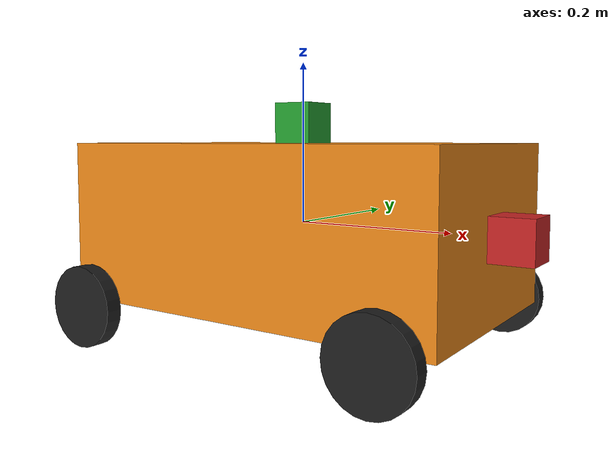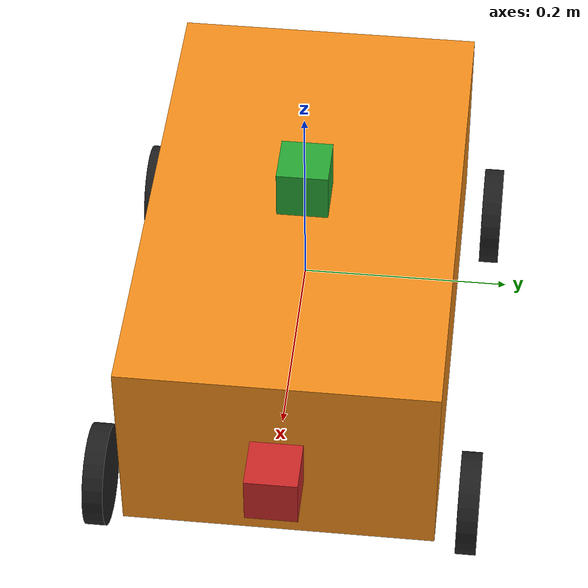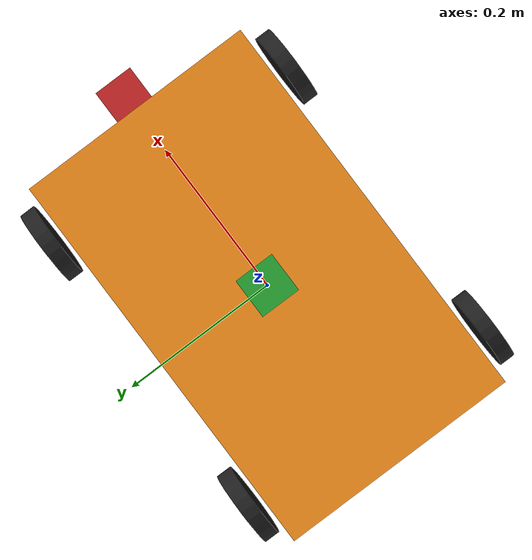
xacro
<?xml version="1.0"?>
<!-- Revolute-Revolute Manipulator -->
<robot name="vehicle" xmlns:xacro="http://www.ros.org/wiki/xacro">

  <!-- Constants for robot dimensions -->
  <xacro:property name="PI" value="3.1415926535897931"/>
  <xacro:property name="mass" value="1" /> <!-- arbitrary value for mass -->
  <xacro:property name="width" value="0.3" /> <!-- Square dimensions (widthxwidth) of vehicle body -->
  <xacro:property name="length" value="0.5" /> <!-- Link 1 -->
  <xacro:property name="height" value="0.2" /> <!-- Link 2 -->
  <xacro:property name="wheel_d" value="0.1" /> <!-- Wheel diameter -->
  <xacro:property name="wheel_t" value="0.02" /> <!-- Wheel thickness -->
  <xacro:property name="gap" value="0.02" /> <!-- Wheel gap -->
  <xacro:property name="camera_link" value="0.05" /> <!-- Size of square 'camera' box -->

  <!-- Import all Gazebo-customization elements, including Gazebo colors -->
  <xacro:include filename="$(find vehicle_description)/urdf/vehicle.gazebo" />
  <!-- Import Rviz colors -->
  <xacro:include filename="$(find vehicle_description)/urdf/materials.xacro" />

  <!-- Body Link  -->
  <link name="body">
    <collision>
      <origin xyz="0 0 0" rpy="0 0 0"/>
      <geometry>
				<box size="${length} ${width} ${height}"/>
      </geometry>
    </collision>

    <visual>
      <origin xyz="0 0 0" rpy="0 0 0"/>
      <geometry>
				<box size="${length} ${width} ${height}"/>
      </geometry>
      <material name="orange"/>
    </visual>

    <inertial>
      <origin xyz="0 0 0" rpy="0 0 0"/>
      <mass value="${mass}"/>
      <inertia
			ixx="${mass / 12.0 * (width*width + height*height)}" ixy="0.0" ixz="0.0"
			iyy="${mass / 12.0 * (length*length + height*height)}" iyz="0.0"
			izz="${mass / 12.0 * (width*width + width*width)}"/>
		</inertial>
  </link>

  <joint name="joint1" type="continuous">
    <parent link="body"/>
    <child link="wheel_lf"/>
    <origin xyz="${length/2-wheel_d/2} ${width/2} ${-height/2}" rpy="0 0 0"/>
    <axis xyz="0 1 0"/>
    <dynamics damping="0.7"/>
  </joint>

  <joint name="joint2" type="continuous">
    <parent link="body"/>
    <child link="wheel_rf"/>
    <origin xyz="${length/2-wheel_d/2} ${-width/2} ${-height/2}" rpy="0 0 0"/>
    <axis xyz="0 1 0"/>
    <dynamics damping="0.7"/>
  </joint>

  <joint name="joint3" type="continuous">
    <parent link="body"/>
    <child link="wheel_lb"/>
    <origin xyz="${-length/2+wheel_d/2} ${width/2} ${-height/2}" rpy="0 0 0"/>
    <axis xyz="0 1 0"/>
    <dynamics damping="0.7"/>
  </joint>

  <joint name="joint4" type="continuous">
    <parent link="body"/>
    <child link="wheel_rb"/>
    <origin xyz="${-length/2+wheel_d/2} ${-width/2} ${-height/2}" rpy="0 0 0"/>
    <axis xyz="0 1 0"/>
    <dynamics damping="0.7"/>
  </joint>

  <joint name="joint5" type="fixed">
    <parent link="body"/>
    <child link="imu_link"/>
    <origin xyz="0 0 ${height/2}" rpy="0 0 0"/>
    <axis xyz="0 1 0"/>
  </joint>

	<!-- IMU Link-->
  <link name="imu_link">
    <collision>
      <origin xyz="0 0 ${camera_link/2}" rpy="0 0 0"/>
      <geometry>
				<box size="${camera_link} ${camera_link} ${camera_link}"/>
      </geometry>
    </collision>

    <visual>
      <origin xyz="0 0 ${camera_link/2}" rpy="0 0 0"/>
      <geometry>
				<box size="${camera_link} ${camera_link} ${camera_link}"/>
      </geometry>
      <material name="green"/>
    </visual>

    <inertial>
      <mass value="1e-5" />
      <origin xyz="0 0 ${camera_link/2}" rpy="0 0 0"/>
      <inertia ixx="1e-6" ixy="0" ixz="0" iyy="1e-6" iyz="0" izz="1e-6" />
    </inertial>
  </link>

  <!-- Wheel Link -->
  <link name="wheel_lf">
    <collision>
      <origin xyz="0 ${wheel_t/2+gap} 0" rpy="${PI/2} 0 0"/>
      <geometry>
				<cylinder radius="${wheel_d/2}" length="${wheel_t}"/>
      </geometry>
    </collision>

    <visual>
      <origin xyz="0 ${wheel_t/2+gap} 0" rpy="${PI/2} 0 0"/>
      <geometry>
				<cylinder radius="${wheel_d/2}" length="${wheel_t}"/>
      </geometry>
      <material name="black"/>
    </visual>

    <inertial>
      <origin xyz="0 ${wheel_t/2+gap} 0" rpy="${PI/2} 0 0"/>
      <mass value="${mass/10}"/>
      <inertia
			ixx="${mass / 12.0 * (wheel_t*wheel_t*2)}" ixy="0.0" ixz="0.0"
			iyy="${mass / 12.0 * (wheel_t*wheel_t*2)}" iyz="0.0"
			izz="${mass / 12.0 * (wheel_d*wheel_d+wheel_t*wheel_t)}"/>
			</inertial>
  </link>

  <!-- Wheel Link -->
  <link name="wheel_rf">
    <collision>
      <origin xyz="0 ${-wheel_t/2-gap} 0" rpy="${PI/2} 0 0"/>
      <geometry>
				<cylinder radius="${wheel_d/2}" length="${wheel_t}"/>
      </geometry>
    </collision>

    <visual>
      <origin xyz="0 ${-wheel_t/2-gap} 0" rpy="${PI/2} 0 0"/>
      <geometry>
				<cylinder radius="${wheel_d/2}" length="${wheel_t}"/>
      </geometry>
      <material name="black"/>
    </visual>

    <inertial>
      <origin xyz="0 ${-wheel_t/2-gap} 0" rpy="${PI/2} 0 0"/>
      <mass value="${mass/10}"/>
      <inertia
			ixx="${mass / 12.0 * (wheel_t*wheel_t*2)}" ixy="0.0" ixz="0.0"
			iyy="${mass / 12.0 * (wheel_t*wheel_t*2)}" iyz="0.0"
			izz="${mass / 12.0 * (wheel_d*wheel_d+wheel_t*wheel_t)}"/>
			</inertial>
  </link>

  <!-- Wheel Link -->
  <link name="wheel_lb">
    <collision>
      <origin xyz="0 ${wheel_t/2+gap} 0" rpy="${PI/2} 0 0"/>
      <geometry>
				<cylinder radius="${wheel_d/2}" length="${wheel_t}"/>
      </geometry>
    </collision>

    <visual>
      <origin xyz="0 ${wheel_t/2+gap} 0" rpy="${PI/2} 0 0"/>
      <geometry>
				<cylinder radius="${wheel_d/2}" length="${wheel_t}"/>
      </geometry>
      <material name="black"/>
    </visual>

    <inertial>
      <origin xyz="0 ${wheel_t/2+gap} 0" rpy="${PI/2} 0 0"/>
      <mass value="${mass/10}"/>
      <inertia
			ixx="${mass / 12.0 * (wheel_t*wheel_t*2)}" ixy="0.0" ixz="0.0"
			iyy="${mass / 12.0 * (wheel_t*wheel_t*2)}" iyz="0.0"
			izz="${mass / 12.0 * (wheel_d*wheel_d+wheel_t*wheel_t)}"/>
			</inertial>
  </link>

  <!-- Wheel Link -->
  <link name="wheel_rb">
    <collision>
      <origin xyz="0 ${-wheel_t/2-gap} 0" rpy="${PI/2} 0 0"/>
      <geometry>
				<cylinder radius="${wheel_d/2}" length="${wheel_t}"/>
      </geometry>
    </collision>

    <visual>
      <origin xyz="0 ${-wheel_t/2-gap} 0" rpy="${PI/2} 0 0"/>
      <geometry>
				<cylinder radius="${wheel_d/2}" length="${wheel_t}"/>
      </geometry>
      <material name="black"/>
    </visual>

    <inertial>
      <origin xyz="0 ${-wheel_t/2-gap} 0" rpy="${PI/2} 0 0"/>
      <mass value="${mass/10}"/>
      <inertia
			ixx="${mass / 12.0 * (wheel_t*wheel_t*2)}" ixy="0.0" ixz="0.0"
			iyy="${mass / 12.0 * (wheel_t*wheel_t*2)}" iyz="0.0"
			izz="${mass / 12.0 * (wheel_d*wheel_d+wheel_t*wheel_t)}"/>
			</inertial>
  </link>

	<!-- Camera Joint -->
  <joint name="camera_joint" type="fixed">
    <axis xyz="0 1 0" />
    <origin xyz="${length/2} 0 0" rpy="0 0 0"/>
    <parent link="body"/>
    <child link="camera_link"/>
  </joint>

  <!-- Camera -->
  <link name="camera_link">
    <collision>
      <origin xyz="${camera_link/2} 0 0" rpy="0 0 0"/>
      <geometry>
				<box size="${camera_link} ${camera_link} ${camera_link}"/>
      </geometry>
    </collision>

    <visual>
      <origin xyz="${camera_link/2} 0 0" rpy="0 0 0"/>
      <geometry>
				<box size="${camera_link} ${camera_link} ${camera_link}"/>
      </geometry>
      <material name="red"/>
    </visual>

    <inertial>
      <mass value="1e-5" />
      <origin xyz="${camera_link/2} 0 0" rpy="0 0 0"/>
      <inertia ixx="1e-6" ixy="0" ixz="0" iyy="1e-6" iyz="0" izz="1e-6" />
    </inertial>
  </link>

  <!-- generate an optical frame http://www.ros.org/reps/rep-0103.html#suffix-frames
      so that ros and opencv can operate on the camera frame correctly -->
  <joint name="camera_optical_joint" type="fixed">
    <!-- these values have to be these values otherwise the gazebo camera image
        won't be aligned properly with the frame it is supposedly originating from -->
    <origin xyz="${camera_link} 0 0" rpy="0 0 0"/>
    <parent link="camera_link"/>
    <child link="camera_link_optical"/>
  </joint>

  <link name="camera_link_optical">
  </link>
</robot>
